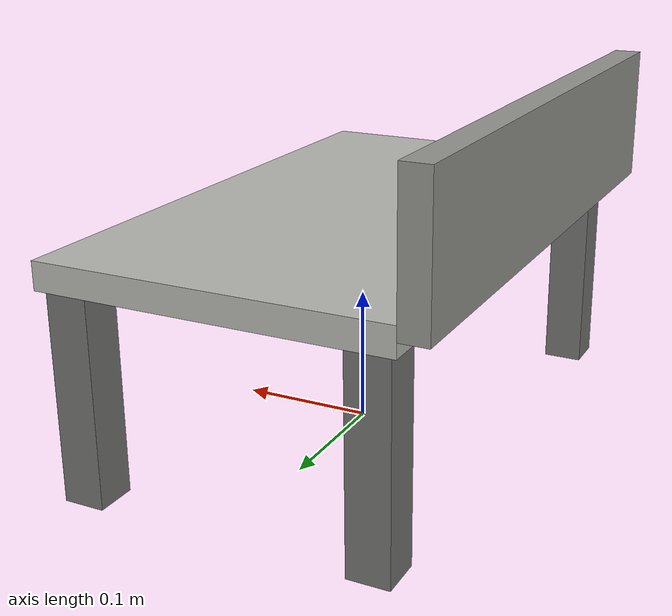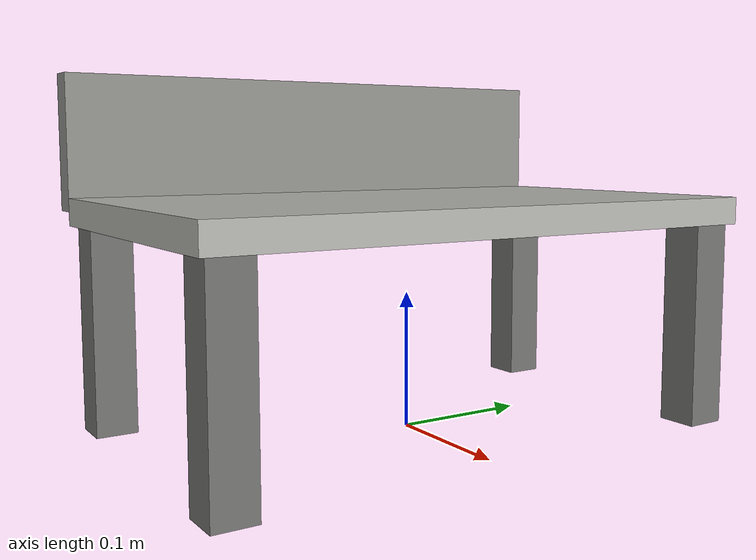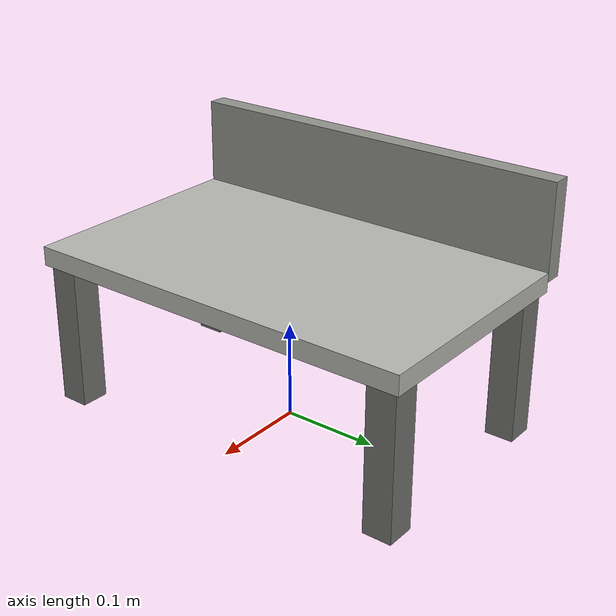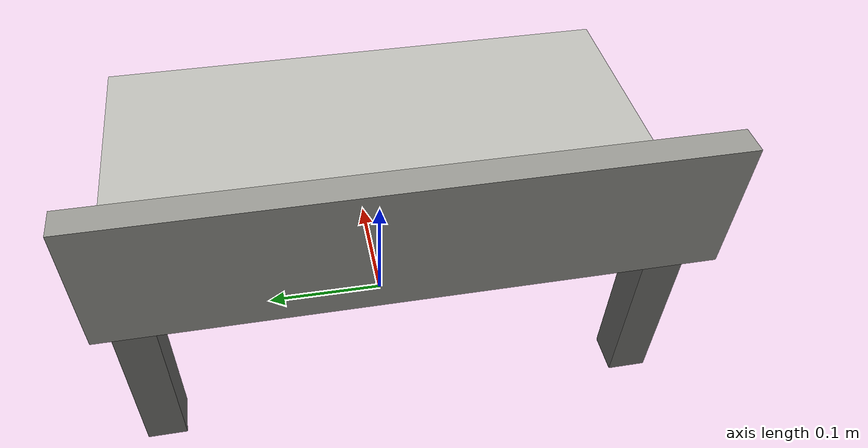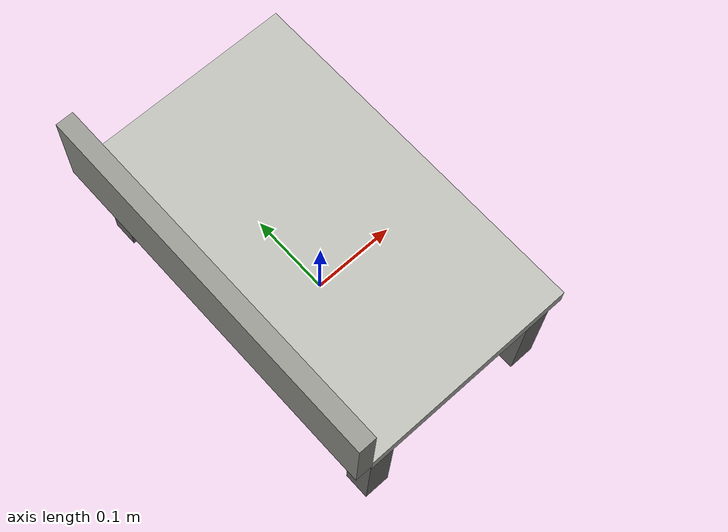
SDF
<?xml version="1.0"?>
<sdf version="1.9">
  <model name="stationary_shelf">
    <static>true</static>
    <link name="link">
      <!-- The 0.17 m top clears both the 0.125 m base and 0.14 m deck
           during in-place turns. -->
      <collision name="slab_col">
        <pose>0 0 0.16 0 0 0</pose>
        <geometry><box><size>0.25 0.42 0.02</size></box></geometry>
        <surface>
          <friction><ode><mu>1.0</mu><mu2>1.0</mu2></ode></friction>
        </surface>
      </collision>
      <visual name="slab_vis">
        <pose>0 0 0.16 0 0 0</pose>
        <geometry><box><size>0.25 0.42 0.02</size></box></geometry>
        <material>
          <ambient>0.72 0.72 0.70 1</ambient>
          <diffuse>0.72 0.72 0.70 1</diffuse>
        </material>
      </visual>

      <!-- Four narrow legs stay outside the base's 0.1775 m radius. -->
      <collision name="leg1_col"><pose>0.105 0.19 0.075 0 0 0</pose><geometry><box><size>0.03 0.03 0.15</size></box></geometry></collision>
      <visual name="leg1_vis"><pose>0.105 0.19 0.075 0 0 0</pose><geometry><box><size>0.03 0.03 0.15</size></box></geometry><material><ambient>0.45 0.45 0.44 1</ambient><diffuse>0.45 0.45 0.44 1</diffuse></material></visual>
      <collision name="leg2_col"><pose>0.105 -0.19 0.075 0 0 0</pose><geometry><box><size>0.03 0.03 0.15</size></box></geometry></collision>
      <visual name="leg2_vis"><pose>0.105 -0.19 0.075 0 0 0</pose><geometry><box><size>0.03 0.03 0.15</size></box></geometry><material><ambient>0.45 0.45 0.44 1</ambient><diffuse>0.45 0.45 0.44 1</diffuse></material></visual>
      <collision name="leg3_col"><pose>-0.105 0.19 0.075 0 0 0</pose><geometry><box><size>0.03 0.03 0.15</size></box></geometry></collision>
      <visual name="leg3_vis"><pose>-0.105 0.19 0.075 0 0 0</pose><geometry><box><size>0.03 0.03 0.15</size></box></geometry><material><ambient>0.45 0.45 0.44 1</ambient><diffuse>0.45 0.45 0.44 1</diffuse></material></visual>
      <collision name="leg4_col"><pose>-0.105 -0.19 0.075 0 0 0</pose><geometry><box><size>0.03 0.03 0.15</size></box></geometry></collision>
      <visual name="leg4_vis"><pose>-0.105 -0.19 0.075 0 0 0</pose><geometry><box><size>0.03 0.03 0.15</size></box></geometry><material><ambient>0.45 0.45 0.44 1</ambient><diffuse>0.45 0.45 0.44 1</diffuse></material></visual>

      <!-- Short back lip: enough to read visually, below the tucked-arm
           sweep and deliberately not used for LiDAR docking. -->
      <collision name="back_col">
        <pose>-0.135 0 0.21 0 0 0</pose>
        <geometry><box><size>0.02 0.42 0.10</size></box></geometry>
      </collision>
      <visual name="back_vis">
        <pose>-0.135 0 0.21 0 0 0</pose>
        <geometry><box><size>0.02 0.42 0.10</size></box></geometry>
        <material>
          <ambient>0.58 0.58 0.56 1</ambient>
          <diffuse>0.58 0.58 0.56 1</diffuse>
        </material>
      </visual>
    </link>
  </model>
</sdf>
